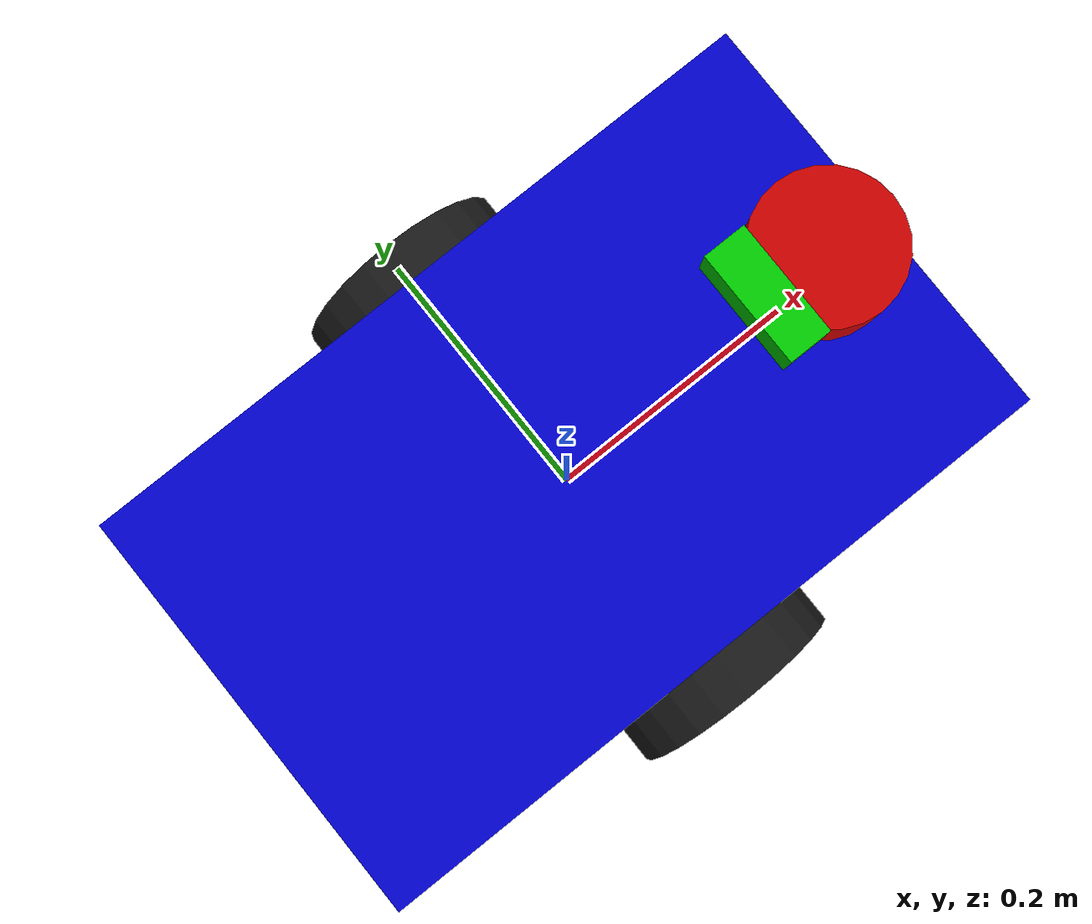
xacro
<?xml version="1.0"?>
<robot xmlns:xacro="http://www.ros.org/wiki/xacro" name="modular_robot">

  <xacro:include filename="$(find ddxd)/06_robot_modeling/xacro/materials.xacro"/>
  <xacro:include filename="$(find ddxd)/06_robot_modeling/xacro/robot_base.xacro"/>
  <xacro:include filename="$(find ddxd)/06_robot_modeling/xacro/robot_sensors.xacro"/>

  <xacro:property name="use_sensors" value="true"/>

  <xacro:robot_base/>

  <xacro:if value="${use_sensors}">
    <xacro:robot_sensors/>
  </xacro:if>

</robot>

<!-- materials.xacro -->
<robot xmlns:xacro="http://www.ros.org/wiki/xacro">

  <material name="blue">
    <color rgba="0 0 0.8 1"/>
  </material>

  <material name="black">
    <color rgba="0.1 0.1 0.1 1"/>
  </material>

  <material name="gray">
    <color rgba="0.5 0.5 0.5 1"/>
  </material>

  <material name="red">
    <color rgba="0.8 0 0 1"/>
  </material>

  <material name="green">
    <color rgba="0 0.8 0 1"/>
  </material>

  <material name="yellow">
    <color rgba="0.8 0.8 0 1"/>
  </material>

  <material name="white">
    <color rgba="1 1 1 1"/>
  </material>

</robot>

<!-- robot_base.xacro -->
<robot xmlns:xacro="http://www.ros.org/wiki/xacro">

  <xacro:property name="base_width" value="0.3"/>
  <xacro:property name="base_length" value="0.5"/>
  <xacro:property name="base_height" value="0.15"/>
  <xacro:property name="wheel_radius" value="0.08"/>
  <xacro:property name="wheel_width" value="0.04"/>
  <xacro:property name="wheel_separation" value="0.34"/>

  <xacro:macro name="wheel" params="prefix reflect">
    <link name="${prefix}_wheel">
      <visual>
        <origin xyz="0 0 0" rpy="1.5707 0 0"/>
        <geometry>
          <cylinder radius="${wheel_radius}" length="${wheel_width}"/>
        </geometry>
        <material name="black"/>
      </visual>
      <collision>
        <origin xyz="0 0 0" rpy="1.5707 0 0"/>
        <geometry>
          <cylinder radius="${wheel_radius}" length="${wheel_width}"/>
        </geometry>
      </collision>
      <inertial>
        <origin xyz="0 0 0" rpy="1.5707 0 0"/>
        <mass value="0.5"/>
        <inertia ixx="0.00107" ixy="0.0" ixz="0.0"
                 iyy="0.00107" iyz="0.0"
                 izz="0.0016"/>
      </inertial>
    </link>

    <joint name="${prefix}_wheel_joint" type="continuous">
      <parent link="base_link"/>
      <child link="${prefix}_wheel"/>
      <origin xyz="0 ${reflect*wheel_separation/2} ${-base_height/2+wheel_radius*0.3}" rpy="0 0 0"/>
      <axis xyz="0 1 0"/>
    </joint>
  </xacro:macro>

  <xacro:macro name="robot_base">
    <link name="base_footprint"/>

    <joint name="base_joint" type="fixed">
      <parent link="base_footprint"/>
      <child link="base_link"/>
      <origin xyz="0 0 ${wheel_radius}" rpy="0 0 0"/>
    </joint>

    <link name="base_link">
      <visual>
        <origin xyz="0 0 0" rpy="0 0 0"/>
        <geometry>
          <box size="${base_length} ${base_width} ${base_height}"/>
        </geometry>
        <material name="blue"/>
      </visual>
      <collision>
        <origin xyz="0 0 0" rpy="0 0 0"/>
        <geometry>
          <box size="${base_length} ${base_width} ${base_height}"/>
        </geometry>
      </collision>
      <inertial>
        <origin xyz="0 0 0" rpy="0 0 0"/>
        <mass value="5.0"/>
        <inertia ixx="${5.0/12*(base_width*base_width+base_height*base_height)}" ixy="0.0" ixz="0.0"
                 iyy="${5.0/12*(base_length*base_length+base_height*base_height)}" iyz="0.0"
                 izz="${5.0/12*(base_length*base_length+base_width*base_width)}"/>
      </inertial>
    </link>

    <xacro:wheel prefix="left" reflect="1"/>
    <xacro:wheel prefix="right" reflect="-1"/>

    <link name="front_caster">
      <visual>
        <origin xyz="0 0 0" rpy="0 0 0"/>
        <geometry>
          <sphere radius="0.03"/>
        </geometry>
        <material name="gray"/>
      </visual>
      <collision>
        <origin xyz="0 0 0" rpy="0 0 0"/>
        <geometry>
          <sphere radius="0.03"/>
        </geometry>
      </collision>
      <inertial>
        <origin xyz="0 0 0" rpy="0 0 0"/>
        <mass value="0.1"/>
        <inertia ixx="0.00004" ixy="0.0" ixz="0.0"
                 iyy="0.00004" iyz="0.0"
                 izz="0.00004"/>
      </inertial>
    </link>

    <joint name="front_caster_joint" type="fixed">
      <parent link="base_link"/>
      <child link="front_caster"/>
      <origin xyz="${base_length/2-0.05} 0 ${-base_height/2-0.045}" rpy="0 0 0"/>
    </joint>
  </xacro:macro>

</robot>

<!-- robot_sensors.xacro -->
<robot xmlns:xacro="http://www.ros.org/wiki/xacro">

  <xacro:macro name="robot_sensors">

    <link name="laser_link">
      <visual>
        <origin xyz="0 0 0" rpy="0 0 0"/>
        <geometry>
          <cylinder radius="0.05" length="0.04"/>
        </geometry>
        <material name="red"/>
      </visual>
      <collision>
        <origin xyz="0 0 0" rpy="0 0 0"/>
        <geometry>
          <cylinder radius="0.05" length="0.04"/>
        </geometry>
      </collision>
      <inertial>
        <origin xyz="0 0 0" rpy="0 0 0"/>
        <mass value="0.2"/>
        <inertia ixx="0.0001" ixy="0.0" ixz="0.0"
                 iyy="0.0001" iyz="0.0"
                 izz="0.00025"/>
      </inertial>
    </link>

    <joint name="laser_joint" type="fixed">
      <parent link="base_link"/>
      <child link="laser_link"/>
      <origin xyz="0.2 0 0.1" rpy="0 0 0"/>
    </joint>

    <link name="camera_link">
      <visual>
        <origin xyz="0 0 0" rpy="0 0 0"/>
        <geometry>
          <box size="0.03 0.08 0.03"/>
        </geometry>
        <material name="green"/>
      </visual>
      <collision>
        <origin xyz="0 0 0" rpy="0 0 0"/>
        <geometry>
          <box size="0.03 0.08 0.03"/>
        </geometry>
      </collision>
      <inertial>
        <origin xyz="0 0 0" rpy="0 0 0"/>
        <mass value="0.1"/>
        <inertia ixx="0.00006" ixy="0.0" ixz="0.0"
                 iyy="0.00001" iyz="0.0"
                 izz="0.00006"/>
      </inertial>
    </link>

    <joint name="camera_joint" type="fixed">
      <parent link="base_link"/>
      <child link="camera_link"/>
      <origin xyz="0.15 0 0.12" rpy="0 0 0"/>
    </joint>

    <link name="camera_optical_frame"/>

    <joint name="camera_optical_joint" type="fixed">
      <parent link="camera_link"/>
      <child link="camera_optical_frame"/>
      <origin xyz="0 0 0" rpy="-1.5707 0 -1.5707"/>
    </joint>

    <link name="imu_link">
      <visual>
        <origin xyz="0 0 0" rpy="0 0 0"/>
        <geometry>
          <box size="0.02 0.02 0.01"/>
        </geometry>
        <material name="yellow"/>
      </visual>
      <inertial>
        <origin xyz="0 0 0" rpy="0 0 0"/>
        <mass value="0.05"/>
        <inertia ixx="0.000002" ixy="0.0" ixz="0.0"
                 iyy="0.000002" iyz="0.0"
                 izz="0.000003"/>
      </inertial>
    </link>

    <joint name="imu_joint" type="fixed">
      <parent link="base_link"/>
      <child link="imu_link"/>
      <origin xyz="0 0 0.02" rpy="0 0 0"/>
    </joint>

  </xacro:macro>

</robot>
